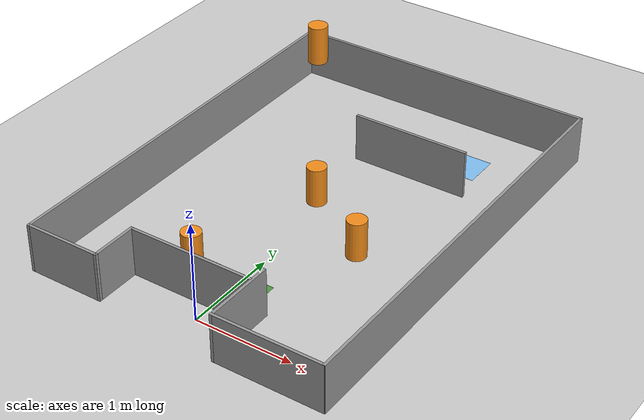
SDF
<sdf version="1.6">
 <world name="default">
  <model name="ground_plane">
   <static>1</static>
   <link name="link">
    <collision name="collision">
     <geometry><plane><normal>0 0 1</normal><size>100 100</size></plane></geometry>
     <surface><friction><ode><mu>100</mu><mu2>50</mu2></ode></friction></surface>
    </collision>
    <visual name="visual">
     <cast_shadows>0</cast_shadows>
     <geometry><plane><normal>0 0 1</normal><size>100 100</size></plane></geometry>
     <material>
      <script><uri>file://media/materials/scripts/gazebo.material</uri><name>Gazebo/Grey</name></script>
     </material>
    </visual>
   </link>
  </model>
  <model name="cylinder_0">
   <pose>-0.164714 2.06831 0.199991 0 -0 1e-06</pose>
   <link name="link">
    <inertial>
     <mass>1</mass>
     <inertia><ixx>0.145833</ixx><ixy>0</ixy><ixz>0</ixz><iyy>0.145833</iyy><iyz>0</iyz><izz>0.125</izz></inertia>
    </inertial>
    <collision name="collision">
     <geometry><cylinder><radius>0.1</radius><length>0.4</length></cylinder></geometry>
    </collision>
    <visual name="visual">
     <geometry><cylinder><radius>0.1</radius><length>0.4</length></cylinder></geometry>
     <material>
      <script><name>Gazebo/Orange</name><uri>file://media/materials/scripts/gazebo.material</uri></script>
     </material>
    </visual>
   </link>
  </model>
  <model name="cylinder_1">
   <pose>-0.483166 0.572641 0.2 0 0 -0.000141</pose>
   <link name="link">
    <inertial>
     <mass>1</mass>
     <inertia><ixx>0.145833</ixx><ixy>0</ixy><ixz>0</ixz><iyy>0.145833</iyy><iyz>0</iyz><izz>0.125</izz></inertia>
    </inertial>
    <collision name="collision">
     <geometry><cylinder><radius>0.1</radius><length>0.4</length></cylinder></geometry>
    </collision>
    <visual name="visual">
     <geometry><cylinder><radius>0.1</radius><length>0.4</length></cylinder></geometry>
     <material>
      <script><name>Gazebo/Orange</name><uri>file://media/materials/scripts/gazebo.material</uri></script>
     </material>
    </visual>
   </link>
  </model>
  <model name="cylinder_2">
   <pose>-0.979916 3.27863 0.920532 0 -0 1e-06</pose>
   <link name="link">
    <inertial>
     <mass>1</mass>
     <inertia><ixx>0.145833</ixx><ixy>0</ixy><ixz>0</ixz><iyy>0.145833</iyy><iyz>0</iyz><izz>0.125</izz></inertia>
    </inertial>
    <collision name="collision">
     <geometry><cylinder><radius>0.1</radius><length>0.4</length></cylinder></geometry>
    </collision>
    <visual name="visual">
     <geometry><cylinder><radius>0.1</radius><length>0.4</length></cylinder></geometry>
     <material>
      <script><name>Gazebo/Orange</name><uri>file://media/materials/scripts/gazebo.material</uri></script>
     </material>
    </visual>
   </link>
  </model>
  <model name="cylinder_3">
   <pose>0.622835 1.55446 0.199991 0 -0 0</pose>
   <link name="link">
    <inertial>
     <mass>1</mass>
     <inertia><ixx>0.145833</ixx><ixy>0</ixy><ixz>0</ixz><iyy>0.145833</iyy><iyz>0</iyz><izz>0.125</izz></inertia>
    </inertial>
    <collision name="collision">
     <geometry><cylinder><radius>0.1</radius><length>0.4</length></cylinder></geometry>
    </collision>
    <visual name="visual">
     <geometry><cylinder><radius>0.1</radius><length>0.4</length></cylinder></geometry>
     <material>
      <script><name>Gazebo/Orange</name><uri>file://media/materials/scripts/gazebo.material</uri></script>
     </material>
    </visual>
   </link>
  </model>
  <model name="loading_station_0">
   <link name="loading_station_0">
    <inertial>
     <mass>1</mass>
     <inertia>
      <ixx>0.166667</ixx>
      <ixy>0</ixy>
      <ixz>0</ixz>
      <iyy>0.166667</iyy>
      <iyz>0</iyz>
      <izz>0.166667</izz>
     </inertia>
    </inertial>
    <visual name="visual">
     <geometry><box><size>0.37 0.37 0.0005</size></box></geometry>
     <material>
      <script><name>Gazebo/Grass</name><uri>file://media/materials/scripts/gazebo.material</uri></script>
     </material>
    </visual>
    <collision name="collision">
     <geometry><box><size>0.37 0.37 0.0005</size></box></geometry>
     <surface>
      <friction>
       <ode><mu>1</mu><mu2>1</mu2><fdir1>0 0 0</fdir1><slip1>0</slip1><slip2>0</slip2></ode>
       <torsional>
        <coefficient>1</coefficient>
        <patch_radius>0</patch_radius>
        <surface_radius>0</surface_radius>
        <use_patch_radius>1</use_patch_radius>
        <ode><slip>0</slip></ode>
       </torsional>
      </friction>
      <bounce><restitution_coefficient>0</restitution_coefficient><threshold>1e+06</threshold></bounce>
      <contact>
       <collide_without_contact>0</collide_without_contact>
       <collide_without_contact_bitmask>1</collide_without_contact_bitmask>
       <collide_bitmask>1</collide_bitmask>
       <ode>
        <soft_cfm>0</soft_cfm>
        <soft_erp>0.2</soft_erp>
        <kp>1e+13</kp>
        <kd>1</kd>
        <max_vel>0.01</max_vel>
        <min_depth>0</min_depth>
       </ode>
       <bullet>
        <split_impulse>1</split_impulse>
        <split_impulse_penetration_threshold>-0.01</split_impulse_penetration_threshold>
        <soft_cfm>0</soft_cfm>
        <soft_erp>0.2</soft_erp>
        <kp>1e+13</kp>
        <kd>1</kd>
       </bullet>
      </contact>
     </surface>
    </collision>
   </link>
   <static>0</static>
   <pose>0.101878 0.557094 0.00025 0 -0 0</pose>
  </model>
  <model name="loading_station_1">
   <link name="loading_station_1">
    <inertial>
     <mass>1</mass>
     <inertia>
      <ixx>0.166667</ixx>
      <ixy>0</ixy>
      <ixz>0</ixz>
      <iyy>0.166667</iyy>
      <iyz>0</iyz>
      <izz>0.166667</izz>
     </inertia>
    </inertial>
    <visual name="visual">
     <geometry><box><size>0.37 0.37 0.0005</size></box></geometry>
     <material>
      <script><name>Gazebo/Grass</name><uri>file://media/materials/scripts/gazebo.material</uri></script>
     </material>
    </visual>
    <collision name="collision">
     <geometry><box><size>0.37 0.37 0.0005</size></box></geometry>
     <surface>
      <friction>
       <ode><mu>1</mu><mu2>1</mu2><fdir1>0 0 0</fdir1><slip1>0</slip1><slip2>0</slip2></ode>
       <torsional>
        <coefficient>1</coefficient>
        <patch_radius>0</patch_radius>
        <surface_radius>0</surface_radius>
        <use_patch_radius>1</use_patch_radius>
        <ode><slip>0</slip></ode>
       </torsional>
      </friction>
      <bounce><restitution_coefficient>0</restitution_coefficient><threshold>1e+06</threshold></bounce>
      <contact>
       <collide_without_contact>0</collide_without_contact>
       <collide_without_contact_bitmask>1</collide_without_contact_bitmask>
       <collide_bitmask>1</collide_bitmask>
       <ode>
        <soft_cfm>0</soft_cfm>
        <soft_erp>0.2</soft_erp>
        <kp>1e+13</kp>
        <kd>1</kd>
        <max_vel>0.01</max_vel>
        <min_depth>0</min_depth>
       </ode>
       <bullet>
        <split_impulse>1</split_impulse>
        <split_impulse_penetration_threshold>-0.01</split_impulse_penetration_threshold>
        <soft_cfm>0</soft_cfm>
        <soft_erp>0.2</soft_erp>
        <kp>1e+13</kp>
        <kd>1</kd>
       </bullet>
      </contact>
     </surface>
    </collision>
   </link>
   <static>0</static>
   <pose>-0.482654 0.565774 -0.00027 1.2e-05 2.2e-05 -3.1e-05</pose>
  </model>
  <model name="unloading_station_0">
   <link name="unloading_station_0">
    <inertial>
     <mass>1</mass>
     <inertia>
      <ixx>0.166667</ixx>
      <ixy>0</ixy>
      <ixz>0</ixz>
      <iyy>0.166667</iyy>
      <iyz>0</iyz>
      <izz>0.166667</izz>
     </inertia>
    </inertial>
    <visual name="visual">
     <geometry><box><size>0.37 0.37 0.0005</size></box></geometry>
     <material>
      <script><name>Gazebo/SkyBlue</name><uri>file://media/materials/scripts/gazebo.material</uri></script>
     </material>
    </visual>
    <collision name="collision">
     <geometry><box><size>0.37 0.37 0.0005</size></box></geometry>
     <surface>
      <friction>
       <ode><mu>1</mu><mu2>1</mu2><fdir1>0 0 0</fdir1><slip1>0</slip1><slip2>0</slip2></ode>
       <torsional>
        <coefficient>1</coefficient>
        <patch_radius>0</patch_radius>
        <surface_radius>0</surface_radius>
        <use_patch_radius>1</use_patch_radius>
        <ode><slip>0</slip></ode>
       </torsional>
      </friction>
      <bounce><restitution_coefficient>0</restitution_coefficient><threshold>1e+06</threshold></bounce>
      <contact>
       <collide_without_contact>0</collide_without_contact>
       <collide_without_contact_bitmask>1</collide_without_contact_bitmask>
       <collide_bitmask>1</collide_bitmask>
       <ode>
        <soft_cfm>0</soft_cfm>
        <soft_erp>0.2</soft_erp>
        <kp>1e+13</kp>
        <kd>1</kd>
        <max_vel>0.01</max_vel>
        <min_depth>0</min_depth>
       </ode>
       <bullet>
        <split_impulse>1</split_impulse>
        <split_impulse_penetration_threshold>-0.01</split_impulse_penetration_threshold>
        <soft_cfm>0</soft_cfm>
        <soft_erp>0.2</soft_erp>
        <kp>1e+13</kp>
        <kd>1</kd>
       </bullet>
      </contact>
     </surface>
    </collision>
   </link>
   <static>0</static>
   <pose>0.7 3.4 0.00025 0 -0 0</pose>
  </model>
  <model name="simplified_arena">
   <pose>-0.03252 1.8776 0 0 -0 0</pose>
   <link name="Wall_0">
    <collision name="Wall_0_Collision">
     <geometry><box><size>1.22 0.03 0.5</size></box></geometry>
     <pose>0 0 0.25 0 -0 0</pose>
    </collision>
    <visual name="Wall_0_Visual">
     <pose>0 0 0.25 0 -0 0</pose>
     <geometry><box><size>1.22 0.03 0.5</size></box></geometry>
     <material>
      <script><uri>file://media/materials/scripts/gazebo.material</uri><name>Gazebo/Grey</name></script>
      <ambient>1 1 1 1</ambient>
     </material>
     <meta><layer>0</layer></meta>
    </visual>
    <pose>0.372573 1.04353 0 0 -0 0</pose>
   </link>
   <link name="Wall_13">
    <collision name="Wall_13_Collision">
     <geometry><box><size>0.500359 0.03 0.5</size></box></geometry>
     <pose>0 0 0.25 0 -0 0</pose>
    </collision>
    <visual name="Wall_13_Visual">
     <pose>0 0 0.25 0 -0 0</pose>
     <geometry><box><size>0.500359 0.03 0.5</size></box></geometry>
     <material>
      <script><uri>file://media/materials/scripts/gazebo.material</uri><name>Gazebo/Grey</name></script>
      <ambient>1 1 1 1</ambient>
     </material>
     <meta><layer>0</layer></meta>
    </visual>
    <pose>-0.824891 -1.89809 0 0 -0 1.5708</pose>
   </link>
   <link name="Wall_15">
    <collision name="Wall_15_Collision">
     <geometry><box><size>1.32 0.03 0.5</size></box></geometry>
     <pose>0 0 0.25 0 -0 0</pose>
    </collision>
    <visual name="Wall_15_Visual">
     <pose>0 0 0.25 0 -0 0</pose>
     <geometry><box><size>1.32 0.03 0.5</size></box></geometry>
     <material>
      <script><uri>file://media/materials/scripts/gazebo.material</uri><name>Gazebo/Grey</name></script>
      <ambient>1 1 1 1</ambient>
     </material>
     <meta><layer>0</layer></meta>
    </visual>
    <pose>-0.179891 -1.66322 0 0 -0 -0.000209</pose>
   </link>
   <link name="Wall_17">
    <collision name="Wall_17_Collision">
     <geometry><box><size>0.75 0.03 0.5</size></box></geometry>
     <pose>0 0 0.25 0 -0 0</pose>
    </collision>
    <visual name="Wall_17_Visual">
     <pose>0 0 0.25 0 -0 0</pose>
     <geometry><box><size>0.75 0.03 0.5</size></box></geometry>
     <material>
      <script><uri>file://media/materials/scripts/gazebo.material</uri><name>Gazebo/Grey</name></script>
      <ambient>1 1 1 1</ambient>
     </material>
     <meta><layer>0</layer></meta>
    </visual>
    <pose>0.487109 -1.85709 0 0 -0 1.5708</pose>
   </link>
   <link name="Wall_2">
    <collision name="Wall_2_Collision">
     <geometry><box><size>3.21956 0.03 0.5</size></box></geometry>
     <pose>0 0 0.25 0 -0 0</pose>
    </collision>
    <visual name="Wall_2_Visual">
     <pose>0 0 0.25 0 -0 0</pose>
     <geometry><box><size>3.21956 0.03 0.5</size></box></geometry>
     <material>
      <script><uri>file://media/materials/scripts/gazebo.material</uri><name>Gazebo/Grey</name></script>
      <ambient>1 1 1 1</ambient>
     </material>
     <meta><layer>0</layer></meta>
    </visual>
    <pose>0 2.21674 0 0 -0 -0.000109</pose>
   </link>
   <link name="Wall_3">
    <collision name="Wall_3_Collision">
     <geometry><box><size>4.46 0.03 0.5</size></box></geometry>
     <pose>0 0 0.25 0 -0 0</pose>
    </collision>
    <visual name="Wall_3_Visual">
     <pose>0 0 0.25 0 -0 0</pose>
     <geometry><box><size>4.46 0.03 0.5</size></box></geometry>
     <material>
      <script><uri>file://media/materials/scripts/gazebo.material</uri><name>Gazebo/Grey</name></script>
      <ambient>1 1 1 1</ambient>
     </material>
     <meta><layer>0</layer></meta>
    </visual>
    <pose>1.59489 0.001567 0 0 -0 -1.5708</pose>
   </link>
   <link name="Wall_5">
    <collision name="Wall_5_Collision">
     <geometry><box><size>1.13 0.03 0.5</size></box></geometry>
     <pose>0 0 0.25 0 -0 0</pose>
    </collision>
    <visual name="Wall_5_Visual">
     <pose>0 0 0.25 0 -0 0</pose>
     <geometry><box><size>1.13 0.03 0.5</size></box></geometry>
     <material>
      <script><uri>file://media/materials/scripts/gazebo.material</uri><name>Gazebo/Grey</name></script>
      <ambient>1 1 1 1</ambient>
     </material>
     <meta><layer>0</layer></meta>
    </visual>
    <pose>1.03717 -2.21693 0 0 -0 -3.14132</pose>
   </link>
   <link name="Wall_7">
    <collision name="Wall_7_Collision">
     <geometry><box><size>4.38035 0.03 0.5</size></box></geometry>
     <pose>0 0 0.25 0 -0 0</pose>
    </collision>
    <visual name="Wall_7_Visual">
     <pose>0 0 0.25 0 -0 0</pose>
     <geometry><box><size>4.38035 0.03 0.5</size></box></geometry>
     <material>
      <script><uri>file://media/materials/scripts/gazebo.material</uri><name>Gazebo/Grey</name></script>
      <ambient>1 1 1 1</ambient>
     </material>
     <meta><layer>0</layer></meta>
    </visual>
    <pose>-1.59489 0.041915 0 0 -0 -1.5708</pose>
   </link>
   <link name="Wall_8">
    <collision name="Wall_8_Collision">
     <geometry><box><size>0.8 0.03 0.5</size></box></geometry>
     <pose>0 0 0.25 0 -0 0</pose>
    </collision>
    <visual name="Wall_8_Visual">
     <pose>0 0 0.25 0 -0 0</pose>
     <geometry><box><size>0.8 0.03 0.5</size></box></geometry>
     <material>
      <script><uri>file://media/materials/scripts/gazebo.material</uri><name>Gazebo/Grey</name></script>
      <ambient>1 1 1 1</ambient>
     </material>
     <meta><layer>0</layer></meta>
    </visual>
    <pose>-1.20989 -2.13308 0 0 -0 0</pose>
   </link>
   <static>1</static>
  </model>
 </world>
</sdf>
